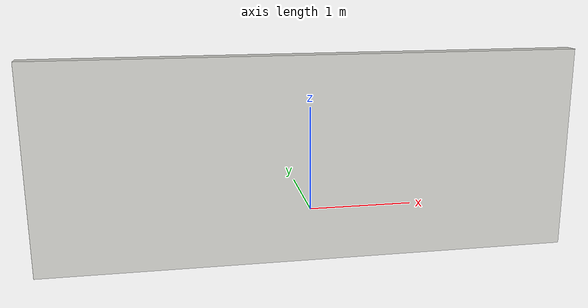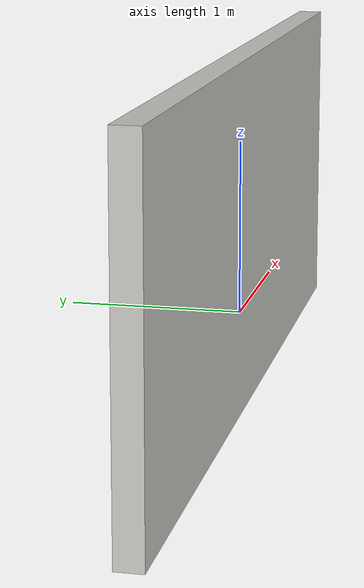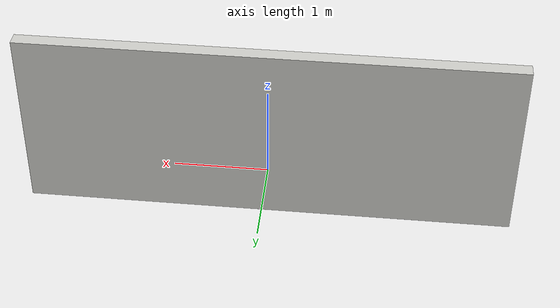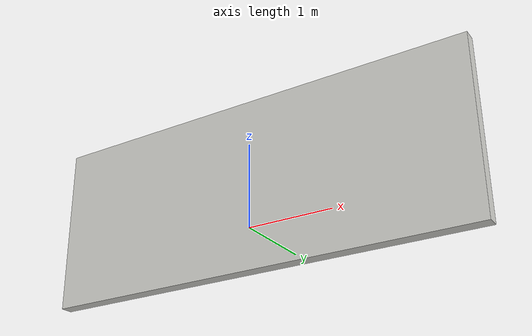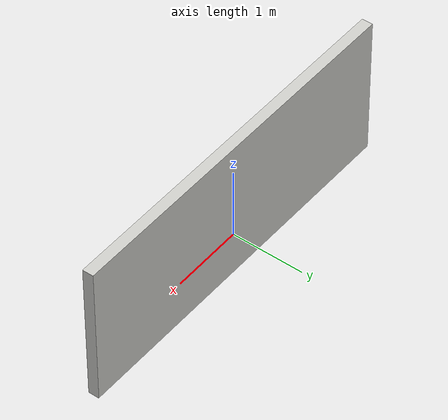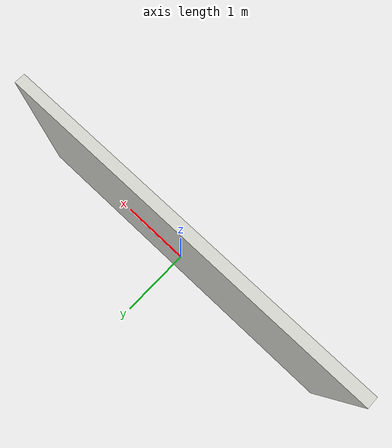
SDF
<?xml version='1.0'?>
<sdf version='1.6'>
  <model name='wall_5_2'>
    <pose frame=''>0 0  0.5 -0 0 0</pose>
    <link name='Wall_45'>
      <collision name='Wall_45_Collision'>
        <geometry>
          <box>
            <size>5.2 0.15 2</size>
          </box>
        </geometry>
        <pose frame=''>0 0 0 0 -0 0 </pose>
      </collision>
      <visual name='Wall_45_Visual'>
        <pose frame=''>0 0 0 0 -0 0 </pose>
        <geometry>
          <box>
            <size>5.2 0.15 2</size>
          </box>
        </geometry>
        <material>
          <script>
            <uri>file://media/materials/scripts/gazebo.material</uri>
            <name>Gazebo/CeilingTiled</name>
          </script>
          <ambient>1 1 1 1</ambient>
        </material>
        <meta>
          <layer>0</layer>
        </meta>
      </visual>
      <pose frame=''>0 0 0 0 -0 0 </pose>
    </link>
    <static>1</static>
  </model>
</sdf>
